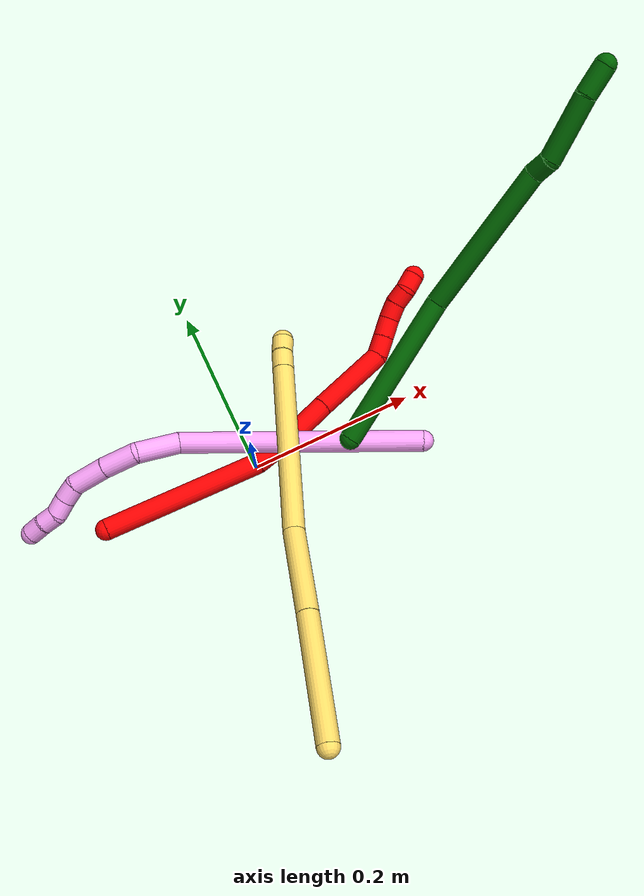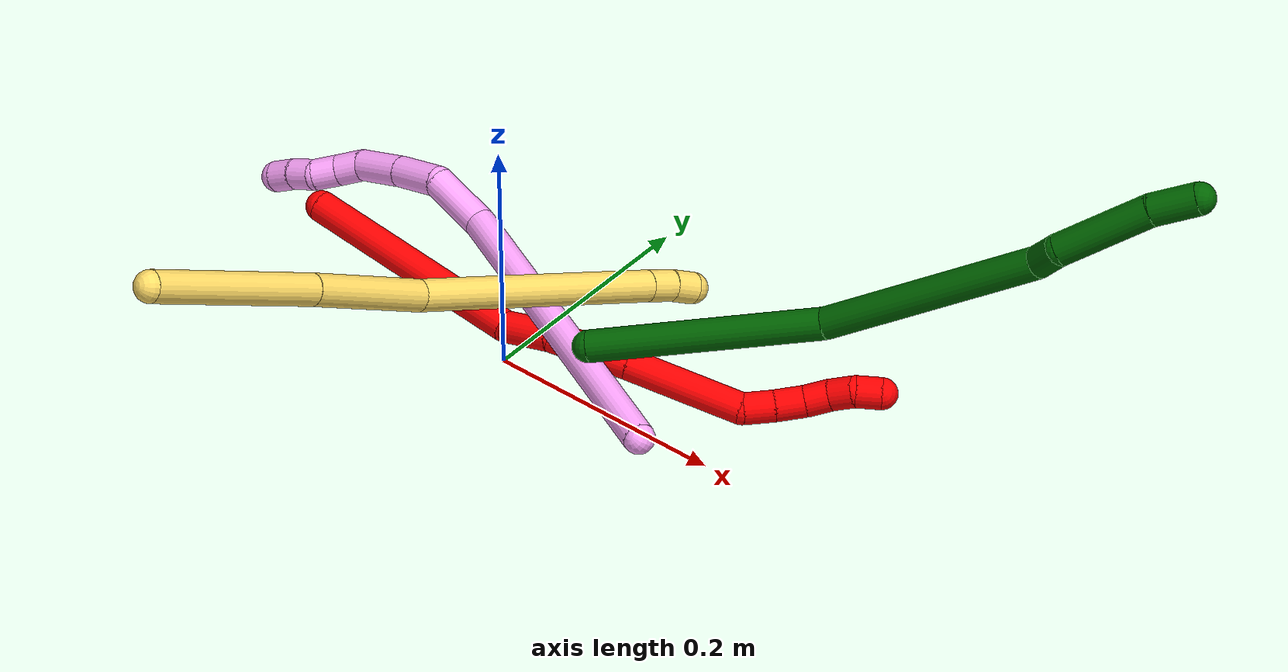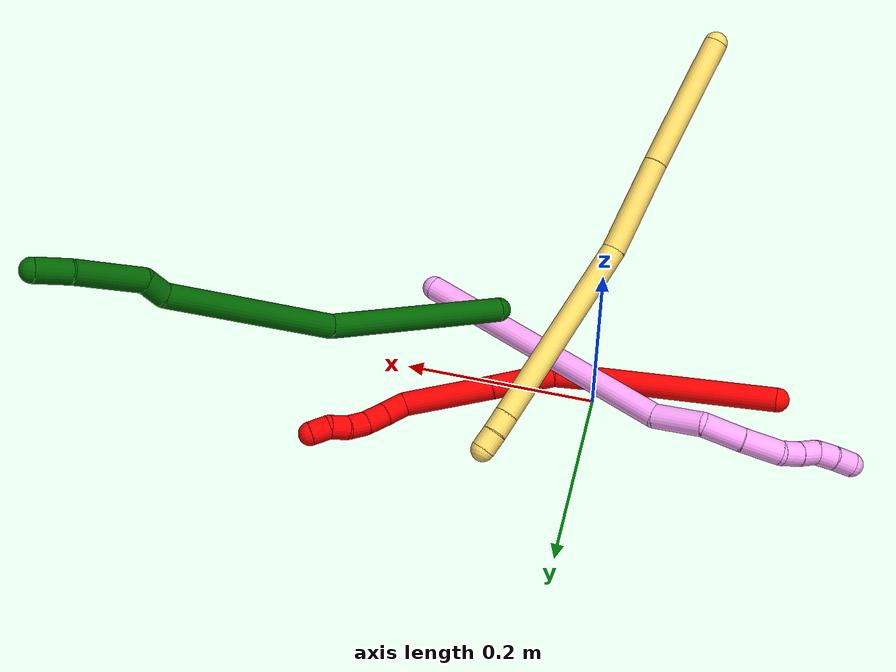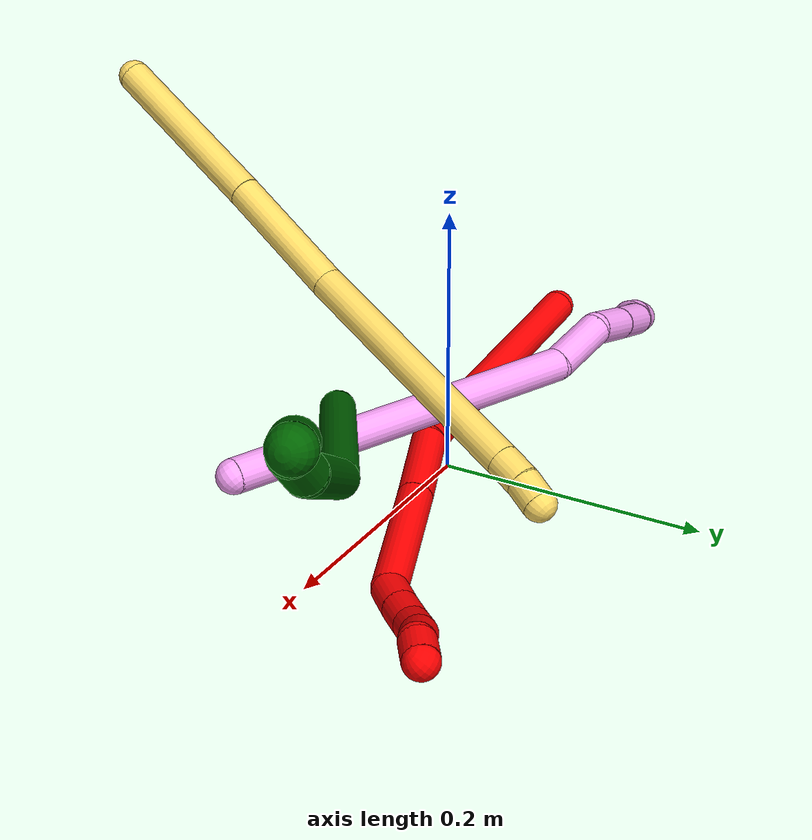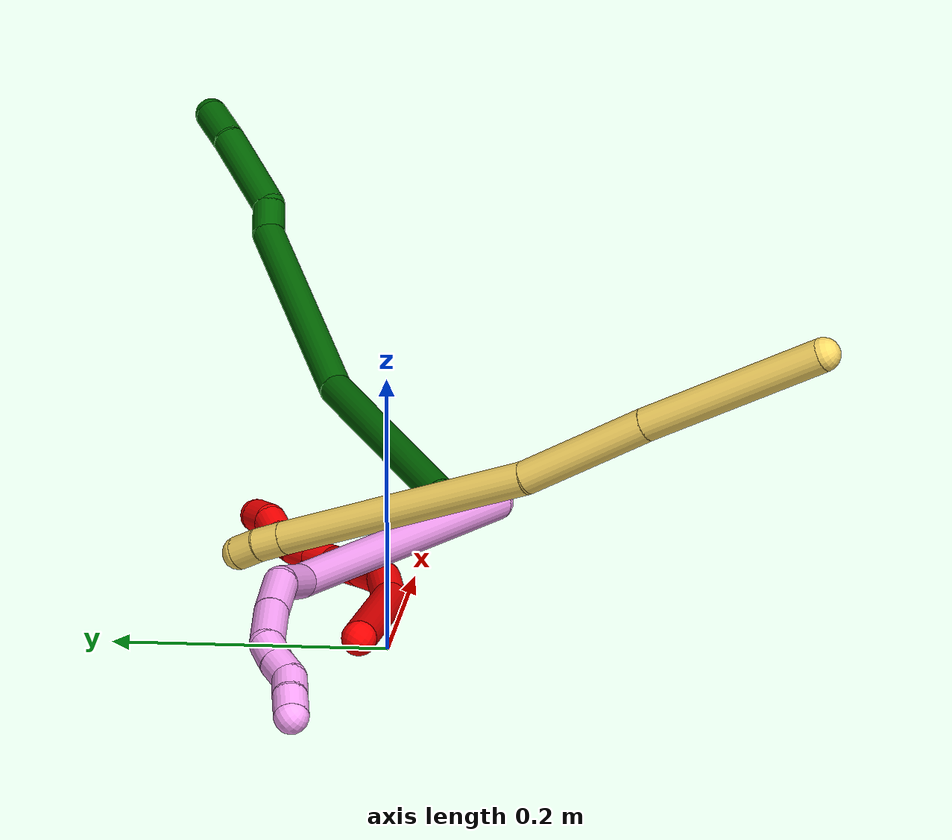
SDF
<sdf version="1.7">
 <world name="default">
  <model name="photoneo_s_sensor">
   <static>1</static>
   <pose>0 0 2 1.57079 1.57079 3.14159</pose>
   <link name="link">
    <inertial><mass>0.1</mass></inertial>
    <sensor name="sensor" type="depth">
     <update_rate>30</update_rate>
     <camera>
      <horizontal_fov>1.22</horizontal_fov>
      <image><width>1920</width><height>1200</height><format>B8G8R8</format></image>
      <clip><near>0.1</near><far>4</far></clip>
      <depth_camera><output>points</output></depth_camera>
     </camera>
     <plugin name="camera_plugin" filename="libgazebo_ros_depth_camera.so">
      <baseline>0.2</baseline>
      <alwaysOn>1</alwaysOn>
      <updateRate>0.0</updateRate>
      <cameraName>camera_ir</cameraName>
      <imageTopicName>/camera/color/image_raw</imageTopicName>
      <cameraInfoTopicName>/camera/color/camera_info</cameraInfoTopicName>
      <depthImageTopicName>/camera/depth/image_raw</depthImageTopicName>
      <depthImageCameraInfoTopicName>/camera/depth/camera_info</depthImageCameraInfoTopicName>
      <pointCloudTopicName>/camera/depth/points</pointCloudTopicName>
      <frameName>fr_optical</frameName>
      <pointCloudCutoff>0.1</pointCloudCutoff>
      <pointCloudCutoffMax>2.0</pointCloudCutoffMax>
      <distortionK1>0</distortionK1>
      <distortionK2>0</distortionK2>
      <distortionK3>0</distortionK3>
      <distortionT1>0</distortionT1>
      <distortionT2>0</distortionT2>
      <CxPrime>0</CxPrime>
      <Cx>0</Cx>
      <Cy>0</Cy>
      <focalLength>0</focalLength>
      <hackBaseline>0</hackBaseline>
     </plugin>
    </sensor>
   </link>
  </model>
  <model name="bin">
   <static>1</static>
   <link name="bottom">
    <collision name="collision-bottom">
     <pose>0 0 -0.01 0 -0 0</pose>
     <geometry><box><size>0.8 0.6 0.02</size></box></geometry>
     <surface>
      <friction><ode><mu>100</mu><mu2>100</mu2></ode></friction>
      <contact><collide_bitmask>65535</collide_bitmask></contact>
     </surface>
    </collision>
   </link>
   <link name="west_wall">
    <collision name="collision-west_wall">
     <pose>-0.41 0 0.1 0 -0 0</pose>
     <geometry><box><size>0.02 0.6 0.2</size></box></geometry>
     <surface>
      <friction><ode><mu>100</mu><mu2>100</mu2></ode></friction>
      <contact><collide_bitmask>65535</collide_bitmask></contact>
     </surface>
    </collision>
   </link>
   <link name="east_wall">
    <collision name="collision-east_wall">
     <pose>0.41 0 0.1 0 -0 0</pose>
     <geometry><box><size>0.02 0.6 0.2</size></box></geometry>
     <surface>
      <friction><ode><mu>100</mu><mu2>100</mu2></ode></friction>
      <contact><collide_bitmask>65535</collide_bitmask></contact>
     </surface>
    </collision>
   </link>
   <link name="south_wall">
    <collision name="collision-south_wall">
     <pose>0 -0.31 0.1 0 -0 0</pose>
     <geometry><box><size>0.8 0.02 0.2</size></box></geometry>
     <surface>
      <friction><ode><mu>100</mu><mu2>100</mu2></ode></friction>
      <contact><collide_bitmask>65535</collide_bitmask></contact>
     </surface>
    </collision>
   </link>
   <link name="north_wall">
    <collision name="collision-north_wall">
     <pose>0 0.31 0.1 0 -0 0</pose>
     <geometry><box><size>0.8 0.02 0.2</size></box></geometry>
     <surface>
      <friction><ode><mu>100</mu><mu2>100</mu2></ode></friction>
      <contact><collide_bitmask>65535</collide_bitmask></contact>
     </surface>
    </collision>
   </link>
  </model>
  <model name="2">
   <static>0</static>
   <link name="2">
    <collision name="collision-cylinder-e_1_1_4">
     <pose>0.071685 0.05326 0.035582 -0.981817 0.841573 -0.469619</pose>
     <geometry><cylinder><radius>0.0125</radius><length>0.192265</length></cylinder></geometry>
     <surface>
      <friction><ode><mu>1.16</mu><mu2>1.16</mu2><slip1>0</slip1><slip2>0</slip2></ode></friction>
      <contact><ode><kp>1e+06</kp><kd>1</kd><max_vel>0</max_vel><min_depth>0.001</min_depth></ode></contact>
     </surface>
    </collision>
    <visual name="visual-cylinder-e_1_1_4">
     <pose>0.071685 0.05326 0.035582 -0.981817 0.841573 -0.469619</pose>
     <geometry><cylinder><radius>0.0125</radius><length>0.192265</length></cylinder></geometry>
     <material><ambient>1 0 0 1</ambient></material>
    </visual>
    <collision name="collision-cylinder-e_2_4_5">
     <pose>0.153118 0.121553 0.079351 -1.07207 0.517633 -0.312002</pose>
     <geometry><cylinder><radius>0.0125</radius><length>0.039398</length></cylinder></geometry>
     <surface>
      <friction><ode><mu>1.16</mu><mu2>1.16</mu2><slip1>0</slip1><slip2>0</slip2></ode></friction>
      <contact><ode><kp>1e+06</kp><kd>1</kd><max_vel>0</max_vel><min_depth>0.001</min_depth></ode></contact>
     </surface>
    </collision>
    <visual name="visual-cylinder-e_2_4_5">
     <pose>0.153118 0.121553 0.079351 -1.07207 0.517633 -0.312002</pose>
     <geometry><cylinder><radius>0.0125</radius><length>0.039398</length></cylinder></geometry>
     <material><ambient>1 0 0 1</ambient></material>
    </visual>
    <collision name="collision-cylinder-e_3_5_6">
     <pose>0.182915 0.161423 0.091153 -1.42633 0.674034 -0.588594</pose>
     <geometry><cylinder><radius>0.0125</radius><length>0.064246</length></cylinder></geometry>
     <surface>
      <friction><ode><mu>1.16</mu><mu2>1.16</mu2><slip1>0</slip1><slip2>0</slip2></ode></friction>
      <contact><ode><kp>1e+06</kp><kd>1</kd><max_vel>0</max_vel><min_depth>0.001</min_depth></ode></contact>
     </surface>
    </collision>
    <visual name="visual-cylinder-e_3_5_6">
     <pose>0.182915 0.161423 0.091153 -1.42633 0.674034 -0.588594</pose>
     <geometry><cylinder><radius>0.0125</radius><length>0.064246</length></cylinder></geometry>
     <material><ambient>1 0 0 1</ambient></material>
    </visual>
    <collision name="collision-cylinder-e_4_6_7">
     <pose>0.233509 0.22184 0.100362 -1.41479 0.70335 -0.608003</pose>
     <geometry><cylinder><radius>0.0125</radius><length>0.094451</length></cylinder></geometry>
     <surface>
      <friction><ode><mu>1.16</mu><mu2>1.16</mu2><slip1>0</slip1><slip2>0</slip2></ode></friction>
      <contact><ode><kp>1e+06</kp><kd>1</kd><max_vel>0</max_vel><min_depth>0.001</min_depth></ode></contact>
     </surface>
    </collision>
    <visual name="visual-cylinder-e_4_6_7">
     <pose>0.233509 0.22184 0.100362 -1.41479 0.70335 -0.608003</pose>
     <geometry><cylinder><radius>0.0125</radius><length>0.094451</length></cylinder></geometry>
     <material><ambient>1 0 0 1</ambient></material>
    </visual>
    <collision name="collision-cylinder-e_5_7_8">
     <pose>0.266793 0.269417 0.105047 -1.64659 0.223932 -0.241418</pose>
     <geometry><cylinder><radius>0.0125</radius><length>0.024679</length></cylinder></geometry>
     <surface>
      <friction><ode><mu>1.16</mu><mu2>1.16</mu2><slip1>0</slip1><slip2>0</slip2></ode></friction>
      <contact><ode><kp>1e+06</kp><kd>1</kd><max_vel>0</max_vel><min_depth>0.001</min_depth></ode></contact>
     </surface>
    </collision>
    <visual name="visual-cylinder-e_5_7_8">
     <pose>0.266793 0.269417 0.105047 -1.64659 0.223932 -0.241418</pose>
     <geometry><cylinder><radius>0.0125</radius><length>0.024679</length></cylinder></geometry>
     <material><ambient>1 0 0 1</ambient></material>
    </visual>
    <collision name="collision-cylinder-e_6_8_9">
     <pose>0.271565 0.293204 0.103732 -1.60508 0.170563 -0.176484</pose>
     <geometry><cylinder><radius>0.0125</radius><length>0.02394</length></cylinder></geometry>
     <surface>
      <friction><ode><mu>1.16</mu><mu2>1.16</mu2><slip1>0</slip1><slip2>0</slip2></ode></friction>
      <contact><ode><kp>1e+06</kp><kd>1</kd><max_vel>0</max_vel><min_depth>0.001</min_depth></ode></contact>
     </surface>
    </collision>
    <visual name="visual-cylinder-e_6_8_9">
     <pose>0.271565 0.293204 0.103732 -1.60508 0.170563 -0.176484</pose>
     <geometry><cylinder><radius>0.0125</radius><length>0.02394</length></cylinder></geometry>
     <material><ambient>1 0 0 1</ambient></material>
    </visual>
    <collision name="collision-cylinder-e_7_9_10">
     <pose>0.274535 0.315097 0.105074 -1.39961 0.091206 -0.076807</pose>
     <geometry><cylinder><radius>0.0125</radius><length>0.020593</length></cylinder></geometry>
     <surface>
      <friction><ode><mu>1.16</mu><mu2>1.16</mu2><slip1>0</slip1><slip2>0</slip2></ode></friction>
      <contact><ode><kp>1e+06</kp><kd>1</kd><max_vel>0</max_vel><min_depth>0.001</min_depth></ode></contact>
     </surface>
    </collision>
    <visual name="visual-cylinder-e_7_9_10">
     <pose>0.274535 0.315097 0.105074 -1.39961 0.091206 -0.076807</pose>
     <geometry><cylinder><radius>0.0125</radius><length>0.020593</length></cylinder></geometry>
     <material><ambient>1 0 0 1</ambient></material>
    </visual>
    <collision name="collision-cylinder-e_8_10_11">
     <pose>0.277492 0.334171 0.11083 -1.15054 0.202705 -0.131701</pose>
     <geometry><cylinder><radius>0.0125</radius><length>0.020061</length></cylinder></geometry>
     <surface>
      <friction><ode><mu>1.16</mu><mu2>1.16</mu2><slip1>0</slip1><slip2>0</slip2></ode></friction>
      <contact><ode><kp>1e+06</kp><kd>1</kd><max_vel>0</max_vel><min_depth>0.001</min_depth></ode></contact>
     </surface>
    </collision>
    <visual name="visual-cylinder-e_8_10_11">
     <pose>0.277492 0.334171 0.11083 -1.15054 0.202705 -0.131701</pose>
     <geometry><cylinder><radius>0.0125</radius><length>0.020061</length></cylinder></geometry>
     <material><ambient>1 0 0 1</ambient></material>
    </visual>
    <collision name="collision-cylinder-e_9_11_2">
     <pose>0.283487 0.352514 0.11505 -1.54824 0.401159 -0.392442</pose>
     <geometry><cylinder><radius>0.0125</radius><length>0.020366</length></cylinder></geometry>
     <surface>
      <friction><ode><mu>1.16</mu><mu2>1.16</mu2><slip1>0</slip1><slip2>0</slip2></ode></friction>
      <contact><ode><kp>1e+06</kp><kd>1</kd><max_vel>0</max_vel><min_depth>0.001</min_depth></ode></contact>
     </surface>
    </collision>
    <visual name="visual-cylinder-e_9_11_2">
     <pose>0.283487 0.352514 0.11505 -1.54824 0.401159 -0.392442</pose>
     <geometry><cylinder><radius>0.0125</radius><length>0.020366</length></cylinder></geometry>
     <material><ambient>1 0 0 1</ambient></material>
    </visual>
    <collision name="collision-sphere-2">
     <pose>0.287464 0.361886 0.115261 0 -0 0</pose>
     <geometry><sphere><radius>0.0125</radius></sphere></geometry>
     <surface>
      <friction><ode><mu>1.16</mu><mu2>1.16</mu2><slip1>0</slip1><slip2>0</slip2></ode></friction>
      <contact><ode><kp>1e+06</kp><kd>1</kd><max_vel>0</max_vel><min_depth>0.001</min_depth></ode></contact>
     </surface>
    </collision>
    <visual name="visual-sphere-2">
     <pose>0.287464 0.361886 0.115261 0 -0 0</pose>
     <geometry><sphere><radius>0.0125</radius></sphere></geometry>
     <material><ambient>1 0 0 1</ambient></material>
    </visual>
    <collision name="collision-sphere-11">
     <pose>0.279511 0.343141 0.114838 0 -0 0</pose>
     <geometry><sphere><radius>0.0125</radius></sphere></geometry>
     <surface>
      <friction><ode><mu>1.16</mu><mu2>1.16</mu2><slip1>0</slip1><slip2>0</slip2></ode></friction>
      <contact><ode><kp>1e+06</kp><kd>1</kd><max_vel>0</max_vel><min_depth>0.001</min_depth></ode></contact>
     </surface>
    </collision>
    <visual name="visual-sphere-11">
     <pose>0.279511 0.343141 0.114838 0 -0 0</pose>
     <geometry><sphere><radius>0.0125</radius></sphere></geometry>
     <material><ambient>1 0 0 1</ambient></material>
    </visual>
    <collision name="collision-sphere-10">
     <pose>0.275472 0.325201 0.106821 0 -0 0</pose>
     <geometry><sphere><radius>0.0125</radius></sphere></geometry>
     <surface>
      <friction><ode><mu>1.16</mu><mu2>1.16</mu2><slip1>0</slip1><slip2>0</slip2></ode></friction>
      <contact><ode><kp>1e+06</kp><kd>1</kd><max_vel>0</max_vel><min_depth>0.001</min_depth></ode></contact>
     </surface>
    </collision>
    <visual name="visual-sphere-10">
     <pose>0.275472 0.325201 0.106821 0 -0 0</pose>
     <geometry><sphere><radius>0.0125</radius></sphere></geometry>
     <material><ambient>1 0 0 1</ambient></material>
    </visual>
    <collision name="collision-sphere-9">
     <pose>0.273597 0.304993 0.103327 0 -0 0</pose>
     <geometry><sphere><radius>0.0125</radius></sphere></geometry>
     <surface>
      <friction><ode><mu>1.16</mu><mu2>1.16</mu2><slip1>0</slip1><slip2>0</slip2></ode></friction>
      <contact><ode><kp>1e+06</kp><kd>1</kd><max_vel>0</max_vel><min_depth>0.001</min_depth></ode></contact>
     </surface>
    </collision>
    <visual name="visual-sphere-9">
     <pose>0.273597 0.304993 0.103327 0 -0 0</pose>
     <geometry><sphere><radius>0.0125</radius></sphere></geometry>
     <material><ambient>1 0 0 1</ambient></material>
    </visual>
    <collision name="collision-sphere-4">
     <pose>0.14337 0.10652 0.071164 0 -0 0</pose>
     <geometry><sphere><radius>0.0125</radius></sphere></geometry>
     <surface>
      <friction><ode><mu>1.16</mu><mu2>1.16</mu2><slip1>0</slip1><slip2>0</slip2></ode></friction>
      <contact><ode><kp>1e+06</kp><kd>1</kd><max_vel>0</max_vel><min_depth>0.001</min_depth></ode></contact>
     </surface>
    </collision>
    <visual name="visual-sphere-4">
     <pose>0.14337 0.10652 0.071164 0 -0 0</pose>
     <geometry><sphere><radius>0.0125</radius></sphere></geometry>
     <material><ambient>1 0 0 1</ambient></material>
    </visual>
    <collision name="collision-sphere-1">
     <geometry><sphere><radius>0.0125</radius></sphere></geometry>
     <surface>
      <friction><ode><mu>1.16</mu><mu2>1.16</mu2><slip1>0</slip1><slip2>0</slip2></ode></friction>
      <contact><ode><kp>1e+06</kp><kd>1</kd><max_vel>0</max_vel><min_depth>0.001</min_depth></ode></contact>
     </surface>
    </collision>
    <visual name="visual-sphere-1">
     <geometry><sphere><radius>0.0125</radius></sphere></geometry>
     <material><ambient>1 0 0 1</ambient></material>
    </visual>
    <collision name="collision-sphere-8">
     <pose>0.269533 0.281414 0.104136 0 -0 0</pose>
     <geometry><sphere><radius>0.0125</radius></sphere></geometry>
     <surface>
      <friction><ode><mu>1.16</mu><mu2>1.16</mu2><slip1>0</slip1><slip2>0</slip2></ode></friction>
      <contact><ode><kp>1e+06</kp><kd>1</kd><max_vel>0</max_vel><min_depth>0.001</min_depth></ode></contact>
     </surface>
    </collision>
    <visual name="visual-sphere-8">
     <pose>0.269533 0.281414 0.104136 0 -0 0</pose>
     <geometry><sphere><radius>0.0125</radius></sphere></geometry>
     <material><ambient>1 0 0 1</ambient></material>
    </visual>
    <collision name="collision-sphere-5">
     <pose>0.162866 0.136586 0.087539 0 -0 0</pose>
     <geometry><sphere><radius>0.0125</radius></sphere></geometry>
     <surface>
      <friction><ode><mu>1.16</mu><mu2>1.16</mu2><slip1>0</slip1><slip2>0</slip2></ode></friction>
      <contact><ode><kp>1e+06</kp><kd>1</kd><max_vel>0</max_vel><min_depth>0.001</min_depth></ode></contact>
     </surface>
    </collision>
    <visual name="visual-sphere-5">
     <pose>0.162866 0.136586 0.087539 0 -0 0</pose>
     <geometry><sphere><radius>0.0125</radius></sphere></geometry>
     <material><ambient>1 0 0 1</ambient></material>
    </visual>
    <collision name="collision-sphere-6">
     <pose>0.202964 0.18626 0.094766 0 -0 0</pose>
     <geometry><sphere><radius>0.0125</radius></sphere></geometry>
     <surface>
      <friction><ode><mu>1.16</mu><mu2>1.16</mu2><slip1>0</slip1><slip2>0</slip2></ode></friction>
      <contact><ode><kp>1e+06</kp><kd>1</kd><max_vel>0</max_vel><min_depth>0.001</min_depth></ode></contact>
     </surface>
    </collision>
    <visual name="visual-sphere-6">
     <pose>0.202964 0.18626 0.094766 0 -0 0</pose>
     <geometry><sphere><radius>0.0125</radius></sphere></geometry>
     <material><ambient>1 0 0 1</ambient></material>
    </visual>
    <collision name="collision-sphere-7">
     <pose>0.264053 0.25742 0.105958 0 -0 0</pose>
     <geometry><sphere><radius>0.0125</radius></sphere></geometry>
     <surface>
      <friction><ode><mu>1.16</mu><mu2>1.16</mu2><slip1>0</slip1><slip2>0</slip2></ode></friction>
      <contact><ode><kp>1e+06</kp><kd>1</kd><max_vel>0</max_vel><min_depth>0.001</min_depth></ode></contact>
     </surface>
    </collision>
    <visual name="visual-sphere-7">
     <pose>0.264053 0.25742 0.105958 0 -0 0</pose>
     <geometry><sphere><radius>0.0125</radius></sphere></geometry>
     <material><ambient>1 0 0 1</ambient></material>
    </visual>
    <inertial>
     <pose>0.167402 0.160786 0.074218 0 -0 0</pose>
     <mass>0.5</mass>
     <inertia>
      <ixx>0.000228</ixx>
      <ixy>0</ixy>
      <ixz>0</ixz>
      <iyy>0.000319</iyy>
      <iyz>0</iyz>
      <izz>-0.000927</izz>
     </inertia>
    </inertial>
   </link>
   <pose>-0.187245 1.8e-05 0.060189 0.297423 0.740476 -0.445327</pose>
  </model>
  <model name="4">
   <static>0</static>
   <link name="4">
    <collision name="collision-cylinder-e_1_1_4">
     <pose>-0.09452 0.101769 -0.024459 -1.80667 -0.734504 0.9082</pose>
     <geometry><cylinder><radius>0.0125</radius><length>0.282058</length></cylinder></geometry>
     <surface>
      <friction><ode><mu>1.16</mu><mu2>1.16</mu2><slip1>0</slip1><slip2>0</slip2></ode></friction>
      <contact><ode><kp>1e+06</kp><kd>1</kd><max_vel>0</max_vel><min_depth>0.001</min_depth></ode></contact>
     </surface>
    </collision>
    <visual name="visual-cylinder-e_1_1_4">
     <pose>-0.09452 0.101769 -0.024459 -1.80667 -0.734504 0.9082</pose>
     <geometry><cylinder><radius>0.0125</radius><length>0.282058</length></cylinder></geometry>
     <material><ambient>1 0.65098 0.996078 1</ambient></material>
    </visual>
    <collision name="collision-cylinder-e_2_4_5">
     <pose>-0.206605 0.221839 -0.044742 -1.34644 -0.752145 0.610158</pose>
     <geometry><cylinder><radius>0.0125</radius><length>0.051416</length></cylinder></geometry>
     <surface>
      <friction><ode><mu>1.16</mu><mu2>1.16</mu2><slip1>0</slip1><slip2>0</slip2></ode></friction>
      <contact><ode><kp>1e+06</kp><kd>1</kd><max_vel>0</max_vel><min_depth>0.001</min_depth></ode></contact>
     </surface>
    </collision>
    <visual name="visual-cylinder-e_2_4_5">
     <pose>-0.206605 0.221839 -0.044742 -1.34644 -0.752145 0.610158</pose>
     <geometry><cylinder><radius>0.0125</radius><length>0.051416</length></cylinder></geometry>
     <material><ambient>1 0.65098 0.996078 1</ambient></material>
    </visual>
    <collision name="collision-cylinder-e_3_5_6">
     <pose>-0.243579 0.247411 -0.041986 -1.76376 -1.20624 1.393</pose>
     <geometry><cylinder><radius>0.0125</radius><length>0.041552</length></cylinder></geometry>
     <surface>
      <friction><ode><mu>1.16</mu><mu2>1.16</mu2><slip1>0</slip1><slip2>0</slip2></ode></friction>
      <contact><ode><kp>1e+06</kp><kd>1</kd><max_vel>0</max_vel><min_depth>0.001</min_depth></ode></contact>
     </surface>
    </collision>
    <visual name="visual-cylinder-e_3_5_6">
     <pose>-0.243579 0.247411 -0.041986 -1.76376 -1.20624 1.393</pose>
     <geometry><cylinder><radius>0.0125</radius><length>0.041552</length></cylinder></geometry>
     <material><ambient>1 0.65098 0.996078 1</ambient></material>
    </visual>
    <collision name="collision-cylinder-e_4_6_7">
     <pose>-0.282877 0.260505 -0.043911 -1.65707 -1.28492 1.36871</pose>
     <geometry><cylinder><radius>0.0125</radius><length>0.041456</length></cylinder></geometry>
     <surface>
      <friction><ode><mu>1.16</mu><mu2>1.16</mu2><slip1>0</slip1><slip2>0</slip2></ode></friction>
      <contact><ode><kp>1e+06</kp><kd>1</kd><max_vel>0</max_vel><min_depth>0.001</min_depth></ode></contact>
     </surface>
    </collision>
    <visual name="visual-cylinder-e_4_6_7">
     <pose>-0.282877 0.260505 -0.043911 -1.65707 -1.28492 1.36871</pose>
     <geometry><cylinder><radius>0.0125</radius><length>0.041456</length></cylinder></geometry>
     <material><ambient>1 0.65098 0.996078 1</ambient></material>
    </visual>
    <collision name="collision-cylinder-e_5_7_8">
     <pose>-0.313334 0.265427 -0.042518 0.443632 -1.37476 -0.366142</pose>
     <geometry><cylinder><radius>0.0125</radius><length>0.021554</length></cylinder></geometry>
     <surface>
      <friction><ode><mu>1.16</mu><mu2>1.16</mu2><slip1>0</slip1><slip2>0</slip2></ode></friction>
      <contact><ode><kp>1e+06</kp><kd>1</kd><max_vel>0</max_vel><min_depth>0.001</min_depth></ode></contact>
     </surface>
    </collision>
    <visual name="visual-cylinder-e_5_7_8">
     <pose>-0.313334 0.265427 -0.042518 0.443632 -1.37476 -0.366142</pose>
     <geometry><cylinder><radius>0.0125</radius><length>0.021554</length></cylinder></geometry>
     <material><ambient>1 0.65098 0.996078 1</ambient></material>
    </visual>
    <collision name="collision-cylinder-e_6_8_9">
     <pose>-0.333786 0.263368 -0.037491 0.354156 -1.24498 -0.25546</pose>
     <geometry><cylinder><radius>0.0125</radius><length>0.020859</length></cylinder></geometry>
     <surface>
      <friction><ode><mu>1.16</mu><mu2>1.16</mu2><slip1>0</slip1><slip2>0</slip2></ode></friction>
      <contact><ode><kp>1e+06</kp><kd>1</kd><max_vel>0</max_vel><min_depth>0.001</min_depth></ode></contact>
     </surface>
    </collision>
    <visual name="visual-cylinder-e_6_8_9">
     <pose>-0.333786 0.263368 -0.037491 0.354156 -1.24498 -0.25546</pose>
     <geometry><cylinder><radius>0.0125</radius><length>0.020859</length></cylinder></geometry>
     <material><ambient>1 0.65098 0.996078 1</ambient></material>
    </visual>
    <collision name="collision-cylinder-e_7_9_10">
     <pose>-0.353729 0.264117 -0.034389 -1.58599 -1.38359 1.39854</pose>
     <geometry><cylinder><radius>0.0125</radius><length>0.020484</length></cylinder></geometry>
     <surface>
      <friction><ode><mu>1.16</mu><mu2>1.16</mu2><slip1>0</slip1><slip2>0</slip2></ode></friction>
      <contact><ode><kp>1e+06</kp><kd>1</kd><max_vel>0</max_vel><min_depth>0.001</min_depth></ode></contact>
     </surface>
    </collision>
    <visual name="visual-cylinder-e_7_9_10">
     <pose>-0.353729 0.264117 -0.034389 -1.58599 -1.38359 1.39854</pose>
     <geometry><cylinder><radius>0.0125</radius><length>0.020484</length></cylinder></geometry>
     <material><ambient>1 0.65098 0.996078 1</ambient></material>
    </visual>
    <collision name="collision-cylinder-e_8_10_2">
     <pose>-0.374053 0.266702 -0.035167 -2.40477 -1.47261 2.33627</pose>
     <geometry><cylinder><radius>0.0125</radius><length>0.020621</length></cylinder></geometry>
     <surface>
      <friction><ode><mu>1.16</mu><mu2>1.16</mu2><slip1>0</slip1><slip2>0</slip2></ode></friction>
      <contact><ode><kp>1e+06</kp><kd>1</kd><max_vel>0</max_vel><min_depth>0.001</min_depth></ode></contact>
     </surface>
    </collision>
    <visual name="visual-cylinder-e_8_10_2">
     <pose>-0.374053 0.266702 -0.035167 -2.40477 -1.47261 2.33627</pose>
     <geometry><cylinder><radius>0.0125</radius><length>0.020621</length></cylinder></geometry>
     <material><ambient>1 0.65098 0.996078 1</ambient></material>
    </visual>
    <collision name="collision-sphere-2">
     <pose>-0.384314 0.267381 -0.035915 0 -0 0</pose>
     <geometry><sphere><radius>0.0125</radius></sphere></geometry>
     <surface>
      <friction><ode><mu>1.16</mu><mu2>1.16</mu2><slip1>0</slip1><slip2>0</slip2></ode></friction>
      <contact><ode><kp>1e+06</kp><kd>1</kd><max_vel>0</max_vel><min_depth>0.001</min_depth></ode></contact>
     </surface>
    </collision>
    <visual name="visual-sphere-2">
     <pose>-0.384314 0.267381 -0.035915 0 -0 0</pose>
     <geometry><sphere><radius>0.0125</radius></sphere></geometry>
     <material><ambient>1 0.65098 0.996078 1</ambient></material>
    </visual>
    <collision name="collision-sphere-10">
     <pose>-0.363792 0.266023 -0.034418 0 -0 0</pose>
     <geometry><sphere><radius>0.0125</radius></sphere></geometry>
     <surface>
      <friction><ode><mu>1.16</mu><mu2>1.16</mu2><slip1>0</slip1><slip2>0</slip2></ode></friction>
      <contact><ode><kp>1e+06</kp><kd>1</kd><max_vel>0</max_vel><min_depth>0.001</min_depth></ode></contact>
     </surface>
    </collision>
    <visual name="visual-sphere-10">
     <pose>-0.363792 0.266023 -0.034418 0 -0 0</pose>
     <geometry><sphere><radius>0.0125</radius></sphere></geometry>
     <material><ambient>1 0.65098 0.996078 1</ambient></material>
    </visual>
    <collision name="collision-sphere-9">
     <pose>-0.343666 0.262211 -0.03436 0 -0 0</pose>
     <geometry><sphere><radius>0.0125</radius></sphere></geometry>
     <surface>
      <friction><ode><mu>1.16</mu><mu2>1.16</mu2><slip1>0</slip1><slip2>0</slip2></ode></friction>
      <contact><ode><kp>1e+06</kp><kd>1</kd><max_vel>0</max_vel><min_depth>0.001</min_depth></ode></contact>
     </surface>
    </collision>
    <visual name="visual-sphere-9">
     <pose>-0.343666 0.262211 -0.03436 0 -0 0</pose>
     <geometry><sphere><radius>0.0125</radius></sphere></geometry>
     <material><ambient>1 0.65098 0.996078 1</ambient></material>
    </visual>
    <collision name="collision-sphere-4">
     <pose>-0.189041 0.203537 -0.048919 0 -0 0</pose>
     <geometry><sphere><radius>0.0125</radius></sphere></geometry>
     <surface>
      <friction><ode><mu>1.16</mu><mu2>1.16</mu2><slip1>0</slip1><slip2>0</slip2></ode></friction>
      <contact><ode><kp>1e+06</kp><kd>1</kd><max_vel>0</max_vel><min_depth>0.001</min_depth></ode></contact>
     </surface>
    </collision>
    <visual name="visual-sphere-4">
     <pose>-0.189041 0.203537 -0.048919 0 -0 0</pose>
     <geometry><sphere><radius>0.0125</radius></sphere></geometry>
     <material><ambient>1 0.65098 0.996078 1</ambient></material>
    </visual>
    <collision name="collision-sphere-1">
     <geometry><sphere><radius>0.0125</radius></sphere></geometry>
     <surface>
      <friction><ode><mu>1.16</mu><mu2>1.16</mu2><slip1>0</slip1><slip2>0</slip2></ode></friction>
      <contact><ode><kp>1e+06</kp><kd>1</kd><max_vel>0</max_vel><min_depth>0.001</min_depth></ode></contact>
     </surface>
    </collision>
    <visual name="visual-sphere-1">
     <geometry><sphere><radius>0.0125</radius></sphere></geometry>
     <material><ambient>1 0.65098 0.996078 1</ambient></material>
    </visual>
    <collision name="collision-sphere-8">
     <pose>-0.323905 0.264526 -0.040622 0 -0 0</pose>
     <geometry><sphere><radius>0.0125</radius></sphere></geometry>
     <surface>
      <friction><ode><mu>1.16</mu><mu2>1.16</mu2><slip1>0</slip1><slip2>0</slip2></ode></friction>
      <contact><ode><kp>1e+06</kp><kd>1</kd><max_vel>0</max_vel><min_depth>0.001</min_depth></ode></contact>
     </surface>
    </collision>
    <visual name="visual-sphere-8">
     <pose>-0.323905 0.264526 -0.040622 0 -0 0</pose>
     <geometry><sphere><radius>0.0125</radius></sphere></geometry>
     <material><ambient>1 0.65098 0.996078 1</ambient></material>
    </visual>
    <collision name="collision-sphere-5">
     <pose>-0.224168 0.240141 -0.040566 0 -0 0</pose>
     <geometry><sphere><radius>0.0125</radius></sphere></geometry>
     <surface>
      <friction><ode><mu>1.16</mu><mu2>1.16</mu2><slip1>0</slip1><slip2>0</slip2></ode></friction>
      <contact><ode><kp>1e+06</kp><kd>1</kd><max_vel>0</max_vel><min_depth>0.001</min_depth></ode></contact>
     </surface>
    </collision>
    <visual name="visual-sphere-5">
     <pose>-0.224168 0.240141 -0.040566 0 -0 0</pose>
     <geometry><sphere><radius>0.0125</radius></sphere></geometry>
     <material><ambient>1 0.65098 0.996078 1</ambient></material>
    </visual>
    <collision name="collision-sphere-6">
     <pose>-0.26299 0.254681 -0.043407 0 -0 0</pose>
     <geometry><sphere><radius>0.0125</radius></sphere></geometry>
     <surface>
      <friction><ode><mu>1.16</mu><mu2>1.16</mu2><slip1>0</slip1><slip2>0</slip2></ode></friction>
      <contact><ode><kp>1e+06</kp><kd>1</kd><max_vel>0</max_vel><min_depth>0.001</min_depth></ode></contact>
     </surface>
    </collision>
    <visual name="visual-sphere-6">
     <pose>-0.26299 0.254681 -0.043407 0 -0 0</pose>
     <geometry><sphere><radius>0.0125</radius></sphere></geometry>
     <material><ambient>1 0.65098 0.996078 1</ambient></material>
    </visual>
    <collision name="collision-sphere-7">
     <pose>-0.302764 0.266328 -0.044414 0 -0 0</pose>
     <geometry><sphere><radius>0.0125</radius></sphere></geometry>
     <surface>
      <friction><ode><mu>1.16</mu><mu2>1.16</mu2><slip1>0</slip1><slip2>0</slip2></ode></friction>
      <contact><ode><kp>1e+06</kp><kd>1</kd><max_vel>0</max_vel><min_depth>0.001</min_depth></ode></contact>
     </surface>
    </collision>
    <visual name="visual-sphere-7">
     <pose>-0.302764 0.266328 -0.044414 0 -0 0</pose>
     <geometry><sphere><radius>0.0125</radius></sphere></geometry>
     <material><ambient>1 0.65098 0.996078 1</ambient></material>
    </visual>
    <inertial>
     <pose>-0.175613 0.16663 -0.031785 0 -0 0</pose>
     <mass>0.5</mass>
     <inertia>
      <ixx>0.001949</ixx>
      <ixy>0</ixy>
      <ixz>0</ixz>
      <iyy>0.001855</iyy>
      <iyz>0</iyz>
      <izz>-8.4e-05</izz>
     </inertia>
    </inertial>
   </link>
   <pose>0.186444 -0.062401 0.062013 0.749986 -0.470588 0.273762</pose>
  </model>
  <model name="5">
   <static>0</static>
   <link name="5">
    <collision name="collision-cylinder-e_1_1_4">
     <pose>0.000326 0.000865 -0.073435 -3.12981 0.00444 -0.720818</pose>
     <geometry><cylinder><radius>0.0125</radius><length>0.146883</length></cylinder></geometry>
     <surface>
      <friction><ode><mu>1.16</mu><mu2>1.16</mu2><slip1>0</slip1><slip2>0</slip2></ode></friction>
      <contact><ode><kp>1e+06</kp><kd>1</kd><max_vel>0</max_vel><min_depth>0.001</min_depth></ode></contact>
     </surface>
    </collision>
    <visual name="visual-cylinder-e_1_1_4">
     <pose>0.000326 0.000865 -0.073435 -3.12981 0.00444 -0.720818</pose>
     <geometry><cylinder><radius>0.0125</radius><length>0.146883</length></cylinder></geometry>
     <material><ambient>1 0.858824 0.4 1</ambient></material>
    </visual>
    <collision name="collision-cylinder-e_2_4_5">
     <pose>0.001386 0.000377 -0.198433 3.11535 0.014218 0.993101</pose>
     <geometry><cylinder><radius>0.0125</radius><length>0.10317</length></cylinder></geometry>
     <surface>
      <friction><ode><mu>1.16</mu><mu2>1.16</mu2><slip1>0</slip1><slip2>0</slip2></ode></friction>
      <contact><ode><kp>1e+06</kp><kd>1</kd><max_vel>0</max_vel><min_depth>0.001</min_depth></ode></contact>
     </surface>
    </collision>
    <visual name="visual-cylinder-e_2_4_5">
     <pose>0.001386 0.000377 -0.198433 3.11535 0.014218 0.993101</pose>
     <geometry><cylinder><radius>0.0125</radius><length>0.10317</length></cylinder></geometry>
     <material><ambient>1 0.858824 0.4 1</ambient></material>
    </visual>
    <collision name="collision-cylinder-e_3_5_6">
     <pose>0.004199 0.01393 -0.352567 -2.99728 0.020067 -0.275876</pose>
     <geometry><cylinder><radius>0.0125</radius><length>0.207342</length></cylinder></geometry>
     <surface>
      <friction><ode><mu>1.16</mu><mu2>1.16</mu2><slip1>0</slip1><slip2>0</slip2></ode></friction>
      <contact><ode><kp>1e+06</kp><kd>1</kd><max_vel>0</max_vel><min_depth>0.001</min_depth></ode></contact>
     </surface>
    </collision>
    <visual name="visual-cylinder-e_3_5_6">
     <pose>0.004199 0.01393 -0.352567 -2.99728 0.020067 -0.275876</pose>
     <geometry><cylinder><radius>0.0125</radius><length>0.207342</length></cylinder></geometry>
     <material><ambient>1 0.858824 0.4 1</ambient></material>
    </visual>
    <collision name="collision-cylinder-e_4_6_7">
     <pose>0.006644 0.030317 -0.466261 -3.00922 0.032462 -0.480328</pose>
     <geometry><cylinder><radius>0.0125</radius><length>0.022451</length></cylinder></geometry>
     <surface>
      <friction><ode><mu>1.16</mu><mu2>1.16</mu2><slip1>0</slip1><slip2>0</slip2></ode></friction>
      <contact><ode><kp>1e+06</kp><kd>1</kd><max_vel>0</max_vel><min_depth>0.001</min_depth></ode></contact>
     </surface>
    </collision>
    <visual name="visual-cylinder-e_4_6_7">
     <pose>0.006644 0.030317 -0.466261 -3.00922 0.032462 -0.480328</pose>
     <geometry><cylinder><radius>0.0125</radius><length>0.022451</length></cylinder></geometry>
     <material><ambient>1 0.858824 0.4 1</ambient></material>
    </visual>
    <collision name="collision-cylinder-e_5_7_2">
     <pose>0.008426 0.032633 -0.487325 -3.05781 0.141153 -2.07116</pose>
     <geometry><cylinder><radius>0.0125</radius><length>0.020155</length></cylinder></geometry>
     <surface>
      <friction><ode><mu>1.16</mu><mu2>1.16</mu2><slip1>0</slip1><slip2>0</slip2></ode></friction>
      <contact><ode><kp>1e+06</kp><kd>1</kd><max_vel>0</max_vel><min_depth>0.001</min_depth></ode></contact>
     </surface>
    </collision>
    <visual name="visual-cylinder-e_5_7_2">
     <pose>0.008426 0.032633 -0.487325 -3.05781 0.141153 -2.07116</pose>
     <geometry><cylinder><radius>0.0125</radius><length>0.020155</length></cylinder></geometry>
     <material><ambient>1 0.858824 0.4 1</ambient></material>
    </visual>
    <collision name="collision-sphere-2">
     <pose>0.009844 0.033468 -0.497267 0 -0 0</pose>
     <geometry><sphere><radius>0.0125</radius></sphere></geometry>
     <surface>
      <friction><ode><mu>1.16</mu><mu2>1.16</mu2><slip1>0</slip1><slip2>0</slip2></ode></friction>
      <contact><ode><kp>1e+06</kp><kd>1</kd><max_vel>0</max_vel><min_depth>0.001</min_depth></ode></contact>
     </surface>
    </collision>
    <visual name="visual-sphere-2">
     <pose>0.009844 0.033468 -0.497267 0 -0 0</pose>
     <geometry><sphere><radius>0.0125</radius></sphere></geometry>
     <material><ambient>1 0.858824 0.4 1</ambient></material>
    </visual>
    <collision name="collision-sphere-7">
     <pose>0.007008 0.031798 -0.477383 0 -0 0</pose>
     <geometry><sphere><radius>0.0125</radius></sphere></geometry>
     <surface>
      <friction><ode><mu>1.16</mu><mu2>1.16</mu2><slip1>0</slip1><slip2>0</slip2></ode></friction>
      <contact><ode><kp>1e+06</kp><kd>1</kd><max_vel>0</max_vel><min_depth>0.001</min_depth></ode></contact>
     </surface>
    </collision>
    <visual name="visual-sphere-7">
     <pose>0.007008 0.031798 -0.477383 0 -0 0</pose>
     <geometry><sphere><radius>0.0125</radius></sphere></geometry>
     <material><ambient>1 0.858824 0.4 1</ambient></material>
    </visual>
    <collision name="collision-sphere-6">
     <pose>0.00628 0.028836 -0.45514 0 -0 0</pose>
     <geometry><sphere><radius>0.0125</radius></sphere></geometry>
     <surface>
      <friction><ode><mu>1.16</mu><mu2>1.16</mu2><slip1>0</slip1><slip2>0</slip2></ode></friction>
      <contact><ode><kp>1e+06</kp><kd>1</kd><max_vel>0</max_vel><min_depth>0.001</min_depth></ode></contact>
     </surface>
    </collision>
    <visual name="visual-sphere-6">
     <pose>0.00628 0.028836 -0.45514 0 -0 0</pose>
     <geometry><sphere><radius>0.0125</radius></sphere></geometry>
     <material><ambient>1 0.858824 0.4 1</ambient></material>
    </visual>
    <collision name="collision-sphere-5">
     <pose>0.002119 -0.000976 -0.249995 0 -0 0</pose>
     <geometry><sphere><radius>0.0125</radius></sphere></geometry>
     <surface>
      <friction><ode><mu>1.16</mu><mu2>1.16</mu2><slip1>0</slip1><slip2>0</slip2></ode></friction>
      <contact><ode><kp>1e+06</kp><kd>1</kd><max_vel>0</max_vel><min_depth>0.001</min_depth></ode></contact>
     </surface>
    </collision>
    <visual name="visual-sphere-5">
     <pose>0.002119 -0.000976 -0.249995 0 -0 0</pose>
     <geometry><sphere><radius>0.0125</radius></sphere></geometry>
     <material><ambient>1 0.858824 0.4 1</ambient></material>
    </visual>
    <collision name="collision-sphere-1">
     <geometry><sphere><radius>0.0125</radius></sphere></geometry>
     <surface>
      <friction><ode><mu>1.16</mu><mu2>1.16</mu2><slip1>0</slip1><slip2>0</slip2></ode></friction>
      <contact><ode><kp>1e+06</kp><kd>1</kd><max_vel>0</max_vel><min_depth>0.001</min_depth></ode></contact>
     </surface>
    </collision>
    <visual name="visual-sphere-1">
     <geometry><sphere><radius>0.0125</radius></sphere></geometry>
     <material><ambient>1 0.858824 0.4 1</ambient></material>
    </visual>
    <collision name="collision-sphere-4">
     <pose>0.000652 0.001731 -0.146871 0 -0 0</pose>
     <geometry><sphere><radius>0.0125</radius></sphere></geometry>
     <surface>
      <friction><ode><mu>1.16</mu><mu2>1.16</mu2><slip1>0</slip1><slip2>0</slip2></ode></friction>
      <contact><ode><kp>1e+06</kp><kd>1</kd><max_vel>0</max_vel><min_depth>0.001</min_depth></ode></contact>
     </surface>
    </collision>
    <visual name="visual-sphere-4">
     <pose>0.000652 0.001731 -0.146871 0 -0 0</pose>
     <geometry><sphere><radius>0.0125</radius></sphere></geometry>
     <material><ambient>1 0.858824 0.4 1</ambient></material>
    </visual>
    <inertial>
     <pose>0.002761 0.008785 -0.249301 0 -0 0</pose>
     <mass>0.5</mass>
     <inertia>
      <ixx>0.000674</ixx>
      <ixy>0</ixy>
      <ixz>0</ixz>
      <iyy>-0.001272</iyy>
      <iyz>0</iyz>
      <izz>-0.000166</izz>
     </inertia>
    </inertial>
   </link>
   <pose>-0.058554 -0.314706 0.239514 1.06041 0.469357 -0.526178</pose>
  </model>
  <model name="6">
   <static>0</static>
   <link name="6">
    <collision name="collision-cylinder-e_1_1_4">
     <pose>0.021985 0.017547 0.086934 -0.199171 0.242998 -0.024398</pose>
     <geometry><cylinder><radius>0.0125</radius><length>0.182743</length></cylinder></geometry>
     <surface>
      <friction><ode><mu>1.16</mu><mu2>1.16</mu2><slip1>0</slip1><slip2>0</slip2></ode></friction>
      <contact><ode><kp>1e+06</kp><kd>1</kd><max_vel>0</max_vel><min_depth>0.001</min_depth></ode></contact>
     </surface>
    </collision>
    <visual name="visual-cylinder-e_1_1_4">
     <pose>0.021985 0.017547 0.086934 -0.199171 0.242998 -0.024398</pose>
     <geometry><cylinder><radius>0.0125</radius><length>0.182743</length></cylinder></geometry>
     <material><ambient>0 0.392157 0.003922 1</ambient></material>
    </visual>
    <collision name="collision-cylinder-e_2_4_5">
     <pose>0.040866 0.062368 0.259208 -0.309324 -0.034635 0.0054</pose>
     <geometry><cylinder><radius>0.0125</radius><length>0.179293</length></cylinder></geometry>
     <surface>
      <friction><ode><mu>1.16</mu><mu2>1.16</mu2><slip1>0</slip1><slip2>0</slip2></ode></friction>
      <contact><ode><kp>1e+06</kp><kd>1</kd><max_vel>0</max_vel><min_depth>0.001</min_depth></ode></contact>
     </surface>
    </collision>
    <visual name="visual-cylinder-e_2_4_5">
     <pose>0.040866 0.062368 0.259208 -0.309324 -0.034635 0.0054</pose>
     <geometry><cylinder><radius>0.0125</radius><length>0.179293</length></cylinder></geometry>
     <material><ambient>0 0.392157 0.003922 1</ambient></material>
    </visual>
    <collision name="collision-cylinder-e_3_5_6">
     <pose>0.032075 0.093833 0.354993 -0.381677 -0.467887 0.092012</pose>
     <geometry><cylinder><radius>0.0125</radius><length>0.025219</length></cylinder></geometry>
     <surface>
      <friction><ode><mu>1.16</mu><mu2>1.16</mu2><slip1>0</slip1><slip2>0</slip2></ode></friction>
      <contact><ode><kp>1e+06</kp><kd>1</kd><max_vel>0</max_vel><min_depth>0.001</min_depth></ode></contact>
     </surface>
    </collision>
    <visual name="visual-cylinder-e_3_5_6">
     <pose>0.032075 0.093833 0.354993 -0.381677 -0.467887 0.092012</pose>
     <geometry><cylinder><radius>0.0125</radius><length>0.025219</length></cylinder></geometry>
     <material><ambient>0 0.392157 0.003922 1</ambient></material>
    </visual>
    <collision name="collision-cylinder-e_4_6_7">
     <pose>0.027238 0.114609 0.39961 -0.451822 0.022367 -0.005141</pose>
     <geometry><cylinder><radius>0.0125</radius><length>0.075986</length></cylinder></geometry>
     <surface>
      <friction><ode><mu>1.16</mu><mu2>1.16</mu2><slip1>0</slip1><slip2>0</slip2></ode></friction>
      <contact><ode><kp>1e+06</kp><kd>1</kd><max_vel>0</max_vel><min_depth>0.001</min_depth></ode></contact>
     </surface>
    </collision>
    <visual name="visual-cylinder-e_4_6_7">
     <pose>0.027238 0.114609 0.39961 -0.451822 0.022367 -0.005141</pose>
     <geometry><cylinder><radius>0.0125</radius><length>0.075986</length></cylinder></geometry>
     <material><ambient>0 0.392157 0.003922 1</ambient></material>
    </visual>
    <collision name="collision-cylinder-e_5_7_2">
     <pose>0.030035 0.136608 0.451237 -0.300787 0.106157 -0.016102</pose>
     <geometry><cylinder><radius>0.0125</radius><length>0.036759</length></cylinder></geometry>
     <surface>
      <friction><ode><mu>1.16</mu><mu2>1.16</mu2><slip1>0</slip1><slip2>0</slip2></ode></friction>
      <contact><ode><kp>1e+06</kp><kd>1</kd><max_vel>0</max_vel><min_depth>0.001</min_depth></ode></contact>
     </surface>
    </collision>
    <visual name="visual-cylinder-e_5_7_2">
     <pose>0.030035 0.136608 0.451237 -0.300787 0.106157 -0.016102</pose>
     <geometry><cylinder><radius>0.0125</radius><length>0.036759</length></cylinder></geometry>
     <material><ambient>0 0.392157 0.003922 1</ambient></material>
    </visual>
    <collision name="collision-sphere-2">
     <pose>0.031982 0.142022 0.468693 0 -0 0</pose>
     <geometry><sphere><radius>0.0125</radius></sphere></geometry>
     <surface>
      <friction><ode><mu>1.16</mu><mu2>1.16</mu2><slip1>0</slip1><slip2>0</slip2></ode></friction>
      <contact><ode><kp>1e+06</kp><kd>1</kd><max_vel>0</max_vel><min_depth>0.001</min_depth></ode></contact>
     </surface>
    </collision>
    <visual name="visual-sphere-2">
     <pose>0.031982 0.142022 0.468693 0 -0 0</pose>
     <geometry><sphere><radius>0.0125</radius></sphere></geometry>
     <material><ambient>0 0.392157 0.003922 1</ambient></material>
    </visual>
    <collision name="collision-sphere-7">
     <pose>0.028087 0.131193 0.433782 0 -0 0</pose>
     <geometry><sphere><radius>0.0125</radius></sphere></geometry>
     <surface>
      <friction><ode><mu>1.16</mu><mu2>1.16</mu2><slip1>0</slip1><slip2>0</slip2></ode></friction>
      <contact><ode><kp>1e+06</kp><kd>1</kd><max_vel>0</max_vel><min_depth>0.001</min_depth></ode></contact>
     </surface>
    </collision>
    <visual name="visual-sphere-7">
     <pose>0.028087 0.131193 0.433782 0 -0 0</pose>
     <geometry><sphere><radius>0.0125</radius></sphere></geometry>
     <material><ambient>0 0.392157 0.003922 1</ambient></material>
    </visual>
    <collision name="collision-sphere-6">
     <pose>0.026388 0.098025 0.365438 0 -0 0</pose>
     <geometry><sphere><radius>0.0125</radius></sphere></geometry>
     <surface>
      <friction><ode><mu>1.16</mu><mu2>1.16</mu2><slip1>0</slip1><slip2>0</slip2></ode></friction>
      <contact><ode><kp>1e+06</kp><kd>1</kd><max_vel>0</max_vel><min_depth>0.001</min_depth></ode></contact>
     </surface>
    </collision>
    <visual name="visual-sphere-6">
     <pose>0.026388 0.098025 0.365438 0 -0 0</pose>
     <geometry><sphere><radius>0.0125</radius></sphere></geometry>
     <material><ambient>0 0.392157 0.003922 1</ambient></material>
    </visual>
    <collision name="collision-sphere-5">
     <pose>0.037762 0.089641 0.344549 0 -0 0</pose>
     <geometry><sphere><radius>0.0125</radius></sphere></geometry>
     <surface>
      <friction><ode><mu>1.16</mu><mu2>1.16</mu2><slip1>0</slip1><slip2>0</slip2></ode></friction>
      <contact><ode><kp>1e+06</kp><kd>1</kd><max_vel>0</max_vel><min_depth>0.001</min_depth></ode></contact>
     </surface>
    </collision>
    <visual name="visual-sphere-5">
     <pose>0.037762 0.089641 0.344549 0 -0 0</pose>
     <geometry><sphere><radius>0.0125</radius></sphere></geometry>
     <material><ambient>0 0.392157 0.003922 1</ambient></material>
    </visual>
    <collision name="collision-sphere-1">
     <geometry><sphere><radius>0.0125</radius></sphere></geometry>
     <surface>
      <friction><ode><mu>1.16</mu><mu2>1.16</mu2><slip1>0</slip1><slip2>0</slip2></ode></friction>
      <contact><ode><kp>1e+06</kp><kd>1</kd><max_vel>0</max_vel><min_depth>0.001</min_depth></ode></contact>
     </surface>
    </collision>
    <visual name="visual-sphere-1">
     <geometry><sphere><radius>0.0125</radius></sphere></geometry>
     <material><ambient>0 0.392157 0.003922 1</ambient></material>
    </visual>
    <collision name="collision-sphere-4">
     <pose>0.04397 0.035095 0.173868 0 -0 0</pose>
     <geometry><sphere><radius>0.0125</radius></sphere></geometry>
     <surface>
      <friction><ode><mu>1.16</mu><mu2>1.16</mu2><slip1>0</slip1><slip2>0</slip2></ode></friction>
      <contact><ode><kp>1e+06</kp><kd>1</kd><max_vel>0</max_vel><min_depth>0.001</min_depth></ode></contact>
     </surface>
    </collision>
    <visual name="visual-sphere-4">
     <pose>0.04397 0.035095 0.173868 0 -0 0</pose>
     <geometry><sphere><radius>0.0125</radius></sphere></geometry>
     <material><ambient>0 0.392157 0.003922 1</ambient></material>
    </visual>
    <inertial>
     <pose>0.030655 0.060971 0.23653 0 -0 0</pose>
     <mass>0.5</mass>
     <inertia>
      <ixx>0.001027</ixx>
      <ixy>0</ixy>
      <ixz>0</ixz>
      <iyy>0.001015</iyy>
      <iyz>0</iyz>
      <izz>-0.000338</izz>
     </inertia>
    </inertial>
   </link>
   <pose>0.109024 -0.027734 0.088025 1.21421 0.728074 1.56101</pose>
  </model>
 </world>
</sdf>
